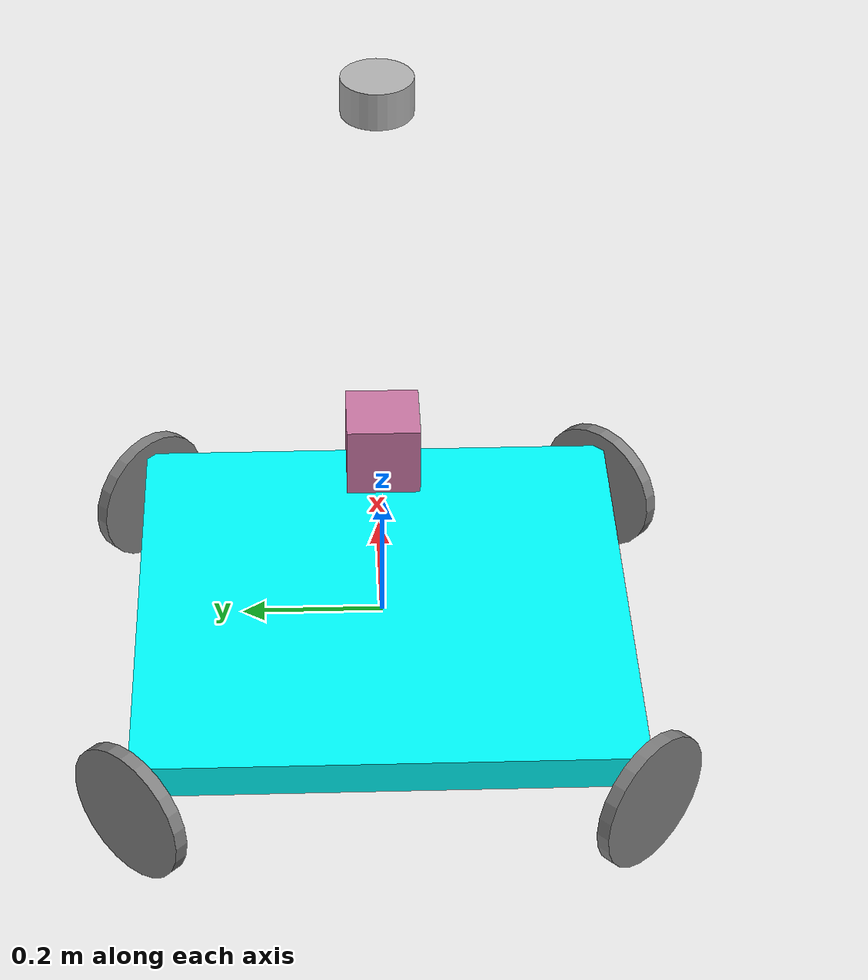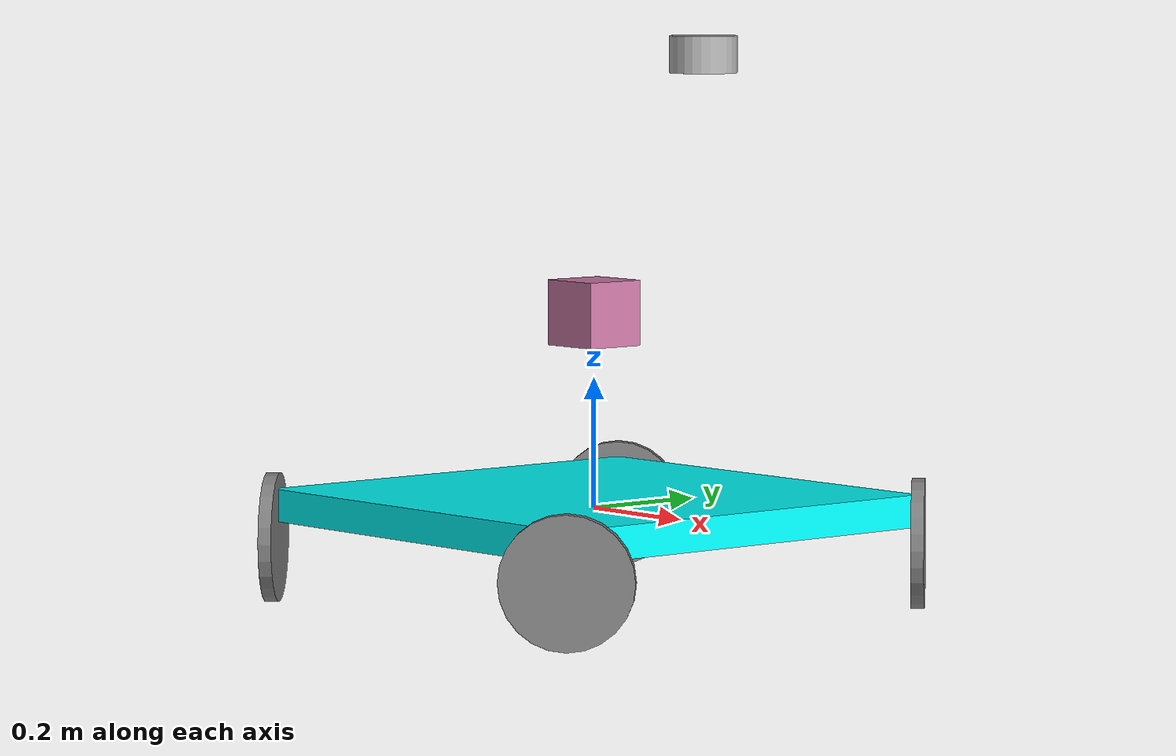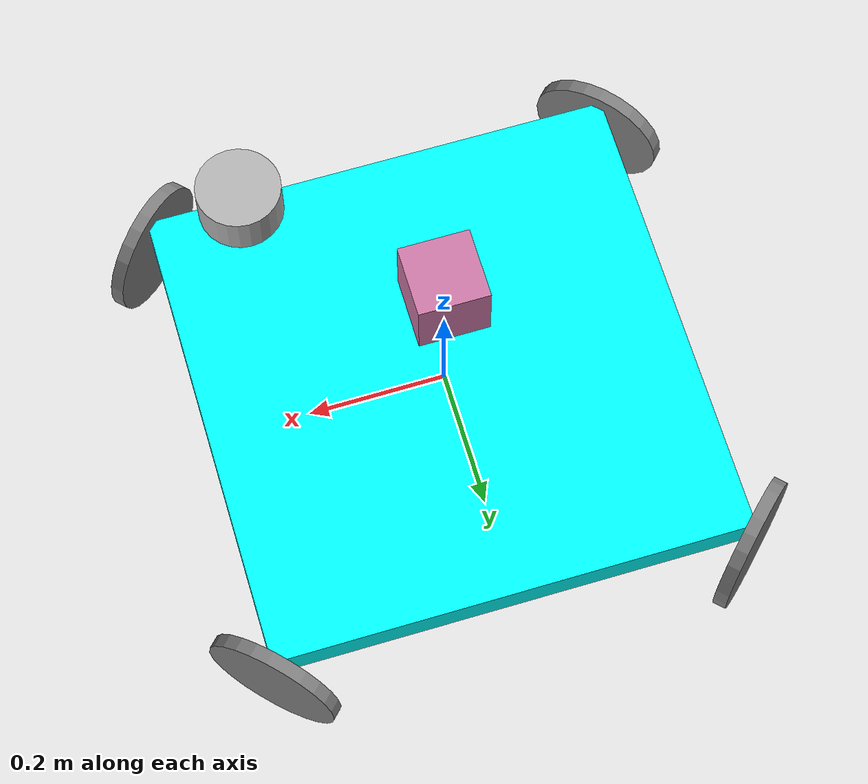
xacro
<?xml version="1.0"?>
<robot name="nhk24zero" xmlns:xacro="http://ros.org/wiki/xacro">

	<xacro:property name="base_length" value="0.700" />
	<xacro:property name="base_width" value="0.700" />
	<xacro:property name="base_height" value="0.050" />
	<xacro:property name="wheel_radius" value="0.100" />
	<xacro:property name="wheel_width" value="0.020" />
	<xacro:property name="wheel_zoff" value="0.050" />

	<!-- Define intertial property macros  -->
	<xacro:macro name="box_inertia" params="m w h d">
		<inertial>
		<origin xyz="0 0 0" rpy="${pi/2} 0 ${pi/2}"/>
		<mass value="${m}"/>
		<inertia ixx="${(m/12) * (h*h + d*d)}" ixy="0.0" ixz="0.0" iyy="${(m/12) * (w*w + d*d)}" iyz="0.0" izz="${(m/12) * (w*w + h*h)}"/>
		</inertial>
	</xacro:macro>

	<xacro:macro name="wheel_inertia" params="m r h">
		<inertial>
		<origin xyz="0 0 0" rpy="${pi/2} 0 0" />
		<mass value="${m}"/>
		<inertia ixx="${(m/12) * (3*r*r + h*h)}" ixy = "0" ixz = "0" iyy="${(m/12) * (3*r*r + h*h)}" iyz = "0" izz="${(m/2) * (r*r)}"/>
		</inertial>
	</xacro:macro>

	<!-- Base Link -->
	<link name="base_link">
		<visual>
			<geometry>
				<box size="${base_length} ${base_width} ${base_height}" />
			</geometry>
			<material name="Cyan">
				<color rgba="0 1.0 1.0 1.0" />
			</material>
		</visual>
		<collision>
			<geometry>
			<box size="${base_length} ${base_width} ${base_height}"/>
			</geometry>
		</collision>

		<xacro:box_inertia m="15" w="${base_width}" d="${base_length}" h="${base_height}"/>
	</link>

	<link name="base_footprint_link">
	</link>

	<joint name="base_footprint_joint" type="fixed">
		<parent link="base_link" />
		<child link="base_footprint_link" />
		<origin xyz="0 0 0" />
	</joint>

	<!-- Omni Wheels -->
	<xacro:macro name="wheel" params="prefix x_reflect y_reflect wheel_yaw">
		<link name="${prefix}_link">
			<visual>
				<origin xyz="0 0 0" rpy="${pi/2} 0 0" />
				<geometry>
					<cylinder radius="${wheel_radius}" length="${wheel_width}" />
				</geometry>
				<material name="Gray">
					<color rgba="0.5 0.5 0.5 1.0" />
				</material>
			</visual>

			<collision>
				<origin xyz="0 0 0" rpy="${pi/2} 0 0"/>
				<geometry>
				<cylinder radius="${wheel_radius}" length="${wheel_width}"/>
				</geometry>
			</collision>

			<xacro:wheel_inertia m="0.5" r="${wheel_radius}" h="${wheel_width}"/>
		</link>

		<joint name="${prefix}_joint" type="continuous">
			<parent link="base_link" />
			<child link="${prefix}_link" />
			<origin xyz="${x_reflect*base_length/2} ${y_reflect*base_width/2} ${-wheel_zoff}"
				rpy="0 0 ${pi*wheel_yaw/4}" />
			<axis xyz="${-x_reflect} ${-y_reflect} 0" />
		</joint>
	</xacro:macro>

	<xacro:wheel prefix="drivewhl_1" x_reflect="1" y_reflect="1" wheel_yaw="3" />
	<xacro:wheel prefix="drivewhl_2" x_reflect="-1" y_reflect="1" wheel_yaw="-3" />
	<xacro:wheel prefix="drivewhl_3" x_reflect="-1" y_reflect="-1" wheel_yaw="-1" />
	<xacro:wheel prefix="drivewhl_4" x_reflect="1" y_reflect="-1" wheel_yaw="1" />

	<link name="imu_link">
		<visual>
			<geometry>
				<box size="0.1 0.1 0.1" />
			</geometry>
		</visual>

		<collision>
			<geometry>
				<box size="0.1 0.1 0.1" />
			</geometry>
		</collision>

		<xacro:box_inertia m="0.1" w="0.1" d="0.1" h="0.1" />
	</link>

	<joint name="imu_joint" type="fixed">
		<parent link="base_link" />
		<child link="imu_link" />
		<origin xyz="0 0 0.30" />
	</joint>

	<gazebo reference="imu_link">
		<sensor name="imu_sensor" type="imu">
			<plugin filename="libgazebo_ros_imu_sensor.so" name="imu_plugin">
				<ros>
					<namespace>/demo</namespace>
					<remapping>~/out:=imu</remapping>
				</ros>
				<initial_orientation_as_reference>false</initial_orientation_as_reference>
			</plugin>
			<always_on>true</always_on>
			<update_rate>100</update_rate>
			<visualize>true</visualize>
			<imu>
				<angular_velocity>
					<x>
						<noise type="gaussian">
							<mean>0.0</mean>
							<stddev>2e-4</stddev>
							<bias_mean>0.0000075</bias_mean>
							<bias_stddev>0.0000008</bias_stddev>
						</noise>
					</x>
					<y>
						<noise type="gaussian">
							<mean>0.0</mean>
							<stddev>2e-4</stddev>
							<bias_mean>0.0000075</bias_mean>
							<bias_stddev>0.0000008</bias_stddev>
						</noise>
					</y>
					<z>
						<noise type="gaussian">
							<mean>0.0</mean>
							<stddev>2e-4</stddev>
							<bias_mean>0.0000075</bias_mean>
							<bias_stddev>0.0000008</bias_stddev>
						</noise>
					</z>
				</angular_velocity>
				<linear_acceleration>
					<x>
						<noise type="gaussian">
							<mean>0.0</mean>
							<stddev>1.7e-2</stddev>
							<bias_mean>0.1</bias_mean>
							<bias_stddev>0.001</bias_stddev>
						</noise>
					</x>
					<y>
						<noise type="gaussian">
							<mean>0.0</mean>
							<stddev>1.7e-2</stddev>
							<bias_mean>0.1</bias_mean>
							<bias_stddev>0.001</bias_stddev>
						</noise>
					</y>
					<z>
						<noise type="gaussian">
							<mean>0.0</mean>
							<stddev>1.7e-2</stddev>
							<bias_mean>0.1</bias_mean>
							<bias_stddev>0.001</bias_stddev>
						</noise>
					</z>
				</linear_acceleration>
			</imu>
		</sensor>
	</gazebo>

	<link name="lidar_link">
		<inertial>
		  <origin xyz="0 0 0" rpy="0 0 0"/>
		  <mass value="0.125"/>
		  <inertia ixx="0.001"  ixy="0"  ixz="0" iyy="0.001" iyz="0" izz="0.001" />
		</inertial>

		<collision>
		  <origin xyz="0 0 0" rpy="0 0 0"/>
		  <geometry>
			 <cylinder radius="0.0508" length="0.055"/>
		  </geometry>
		</collision>

		<visual>
		  <origin xyz="0 0 0" rpy="0 0 0"/>
		  <geometry>
			 <cylinder radius="0.0508" length="0.055"/>
		  </geometry>
		</visual>
	  </link>

	  <joint name="lidar_joint" type="fixed">
		<parent link="base_link"/>
		<child link="lidar_link"/>
		<origin xyz="0.25 0 0.70" rpy="0 0 0"/>
	  </joint>

	  <gazebo reference="lidar_link">
		<sensor name="lidar" type="ray">
		  <always_on>true</always_on>
		  <visualize>true</visualize>
		  <update_rate>5</update_rate>
		  <ray>
			<scan>
			  <horizontal>
				<samples>360</samples>
				<resolution>1.000000</resolution>
				<min_angle>0.000000</min_angle>
				<max_angle>6.280000</max_angle>
			  </horizontal>
			</scan>
			<range>
			  <min>0.120000</min>
			  <max>3.5</max>
			  <resolution>0.015000</resolution>
			</range>
			<noise>
			  <type>gaussian</type>
			  <mean>0.0</mean>
			  <stddev>0.01</stddev>
			</noise>
		  </ray>
		  <plugin name="scan" filename="libgazebo_ros_ray_sensor.so">
			<ros>
			  <remapping>~/out:=scan</remapping>
			</ros>
			<output_type>sensor_msgs/LaserScan</output_type>
			<frame_name>lidar_link</frame_name>
		  </plugin>
		</sensor>
	  </gazebo>
</robot>
